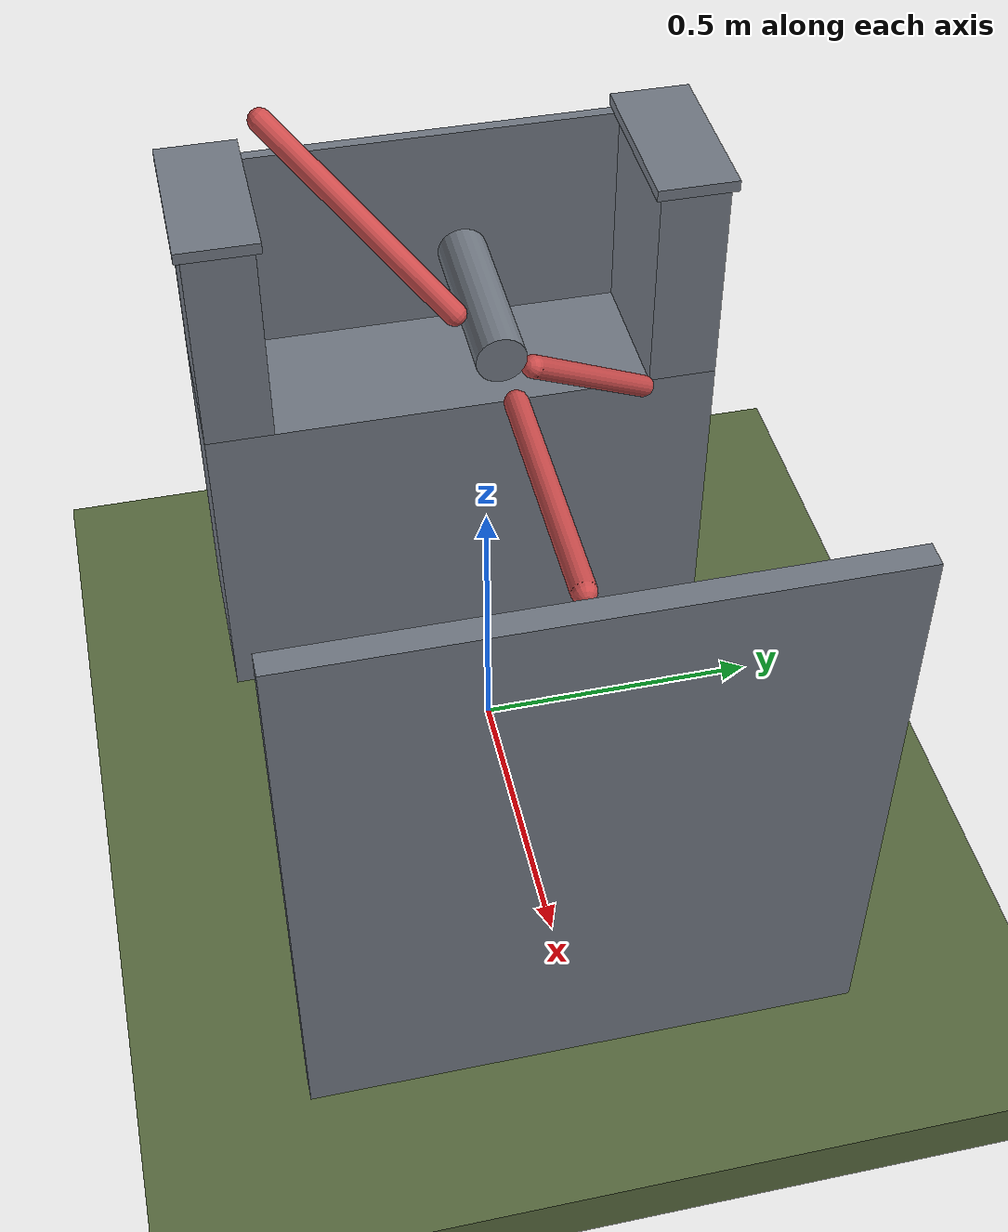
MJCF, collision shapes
<?xml version="1.0" ?>
<mujoco model="db0344_turnstile_tripod_simple">
  <compiler angle="radian" meshdir="../../hardware" texturedir="../../textures" autolimits="true" inertiafromgeom="false"/>
  <option timestep="0.002" integrator="implicitfast" cone="elliptic" impratio="10" noslip_iterations="3">
    <flag multiccd="enable"/>
  </option>
  <size memory="16M"/>
  <default>
    <geom condim="4" solref="0.005 1" solimp="0.95 0.99 0.001"/>
    <joint solreflimit="0.005 1" solimplimit="0.95 0.99 0.001"/>
    <tendon solreflimit="0.005 1"/>
    <equality solref="0.002 1"/>
  </default>
  <visual>
    <headlight ambient="0.4 0.4 0.4" diffuse="0.7 0.7 0.7" specular="0.2 0.2 0.2"/>
    <quality shadowsize="4096"/>
    <map znear="0.01" zfar="60"/>
  </visual>
  <asset>
    <mesh name="tripod_ae832648e5" file="tripod_ae832648e5.obj"/>
    <material name="mat_floor" rgba="0.35 0.42 0.25 1" specular="0.2" shininess="0.15" reflectance="0"/>
    <material name="mat_wall" rgba="0.78 0.76 0.7 1" specular="0.2" shininess="0.1" reflectance="0"/>
    <material name="mat_frame" rgba="0.45 0.48 0.52 1" specular="0.32" shininess="0.6" reflectance="0.08"/>
    <material name="mat_op_stainless" rgba="0.75 0.76 0.77 1" specular="0.8" shininess="0.65" reflectance="0.4"/>
    <texture name="skybox" type="skybox" builtin="gradient" rgb1="0.6 0.7 0.85" rgb2="0.9 0.92 0.95" width="256" height="256"/>
  </asset>
  <worldbody>
    <light name="sun" pos="1.5 -2.5 4" dir="-0.3 0.5 -0.8" directional="true" diffuse="0.8 0.8 0.8" specular="0.3 0.3 0.3" castshadow="true"/>
    <light name="fill" pos="-1.5 2.5 3" dir="0.3 -0.5 -0.7" directional="true" diffuse="0.35 0.35 0.4" castshadow="false"/>
    <camera name="robot_view" pos="0 -1.875 1.05" xyaxes="1 0 0 0 0.26963 0.962964" fovy="52"/>
    <camera name="far_view" pos="0 1.875 1.05" xyaxes="-1 0 0 0 -0.26963 0.962964" fovy="52"/>
    <camera name="iso" pos="1.425 -1.575 1.35" xyaxes="0.741536 0.670913 0 -0.242917 0.268487 0.932151" fovy="46"/>
    <camera name="detail_handle" pos="0.55 -1.1 1.3" xyaxes="0.975133 0.221621 0 -0.065674 0.288965 0.955084" fovy="38"/>
    <geom name="floor" type="box" size="6 6 0.05" pos="0 0 -0.05" material="mat_floor" group="0" contype="1" conaffinity="1" friction="0.8 0.005 0.0001" density="2400"/>
    <geom name="cabinet" type="box" size="0.14 0.45 0.3" pos="-0.315 0 0.3" material="mat_frame" group="0" contype="1" conaffinity="1" friction="0.6 0.005 0.0001" density="800"/>
    <geom name="cabinet_end_n" type="box" size="0.14 0.06 0.19" pos="-0.315 -0.39 0.79" material="mat_frame" group="0" contype="1" conaffinity="1" friction="0.6 0.005 0.0001" density="800"/>
    <geom name="cabinet_end_p" type="box" size="0.14 0.06 0.19" pos="-0.315 0.39 0.79" material="mat_frame" group="0" contype="1" conaffinity="1" friction="0.6 0.005 0.0001" density="800"/>
    <geom name="cabinet_back" type="box" size="0.01 0.45 0.19" pos="-0.445 0 0.79" material="mat_frame" group="0" contype="1" conaffinity="1" friction="0.6 0.005 0.0001" density="800"/>
    <geom name="cabinet_top_n" type="box" size="0.15 0.07 0.01" pos="-0.315 -0.39 0.99" material="mat_frame" group="0" contype="1" conaffinity="1" friction="0.6 0.005 0.0001" density="7900"/>
    <geom name="cabinet_top_p" type="box" size="0.15 0.07 0.01" pos="-0.315 0.39 0.99" material="mat_frame" group="0" contype="1" conaffinity="1" friction="0.6 0.005 0.0001" density="7900"/>
    <geom name="guide_rail_post" type="box" size="0.02 0.45 0.5" pos="0.715 0 0.5" material="mat_frame" group="0" contype="1" conaffinity="1" friction="0.6 0.005 0.0001" density="7900"/>
    <site name="approach_point" pos="0.375 -1.2 0" quat="1 0 0 0" size="0.05" rgba="0.2 0.9 0.2 0.5" group="4"/>
    <site name="goal_point" pos="0.375 1.2 0" quat="1 0 0 0" size="0.05" rgba="0.2 0.9 0.2 0.5" group="4"/>
    <site name="door_plane_center" pos="0.375 0 1" quat="1 0 0 0" size="0.02" rgba="0.2 0.9 0.2 0.5" group="4"/>
    <body name="rotor" pos="0.115 0 0.93">
      <inertial pos="-0.005663 0 0" mass="10.738226" quat="0.653281 -0.270598 -0.270598 -0.653281" diaginertia="0.569651413 0.693715098 1.243060055"/>
      <joint name="rotor_hinge" type="hinge" axis="0 0.707107 0.707107" limited="false" damping="2" frictionloss="3.084245" armature="0.05"/>
      <geom name="hub_boss" type="cylinder" size="0.04 0.145" pos="-0.145 0 0" quat="0.707107 0 0.707107 0" material="mat_frame" group="1" contype="0" conaffinity="0" density="800"/>
      <geom name="tripod_mesh" type="mesh" mesh="tripod_ae832648e5" pos="0 0 0" quat="0.92388 -0.382683 0 0" material="mat_op_stainless" group="1" contype="0" conaffinity="0" density="7900"/>
      <geom name="arm_0_col" type="capsule" size="0.019 0.2" pos="0.3 0 0" quat="0.707107 0 0.707107 0" material="mat_op_stainless" group="3" contype="1" conaffinity="1" rgba="0.8 0.3 0.3 0.25" friction="0.6 0.005 0.0001" density="7900"/>
      <geom name="arm_1_col" type="capsule" size="0.019 0.2" pos="-0.15 0.183712 -0.183712" quat="0.440243 -0.695494 -0.567868 0" material="mat_op_stainless" group="3" contype="1" conaffinity="1" rgba="0.8 0.3 0.3 0.25" friction="0.6 0.005 0.0001" density="7900"/>
      <geom name="arm_2_col" type="capsule" size="0.019 0.2" pos="-0.15 -0.183712 0.183712" quat="0.897879 0.341011 -0.278434 0" material="mat_op_stainless" group="3" contype="1" conaffinity="1" rgba="0.8 0.3 0.3 0.25" friction="0.6 0.005 0.0001" density="7900"/>
      <site name="arm_push" pos="0.45 0 0" quat="1 0 0 0" size="0.015" rgba="0.2 0.9 0.2 0.5" group="4"/>
    </body>
  </worldbody>
  <equality>
    <weld name="rotor_solenoid_hold" body1="rotor" body2="world" active="true"/>
  </equality>
  <sensor>
    <jointpos name="rotor_hinge_pos" joint="rotor_hinge"/>
    <jointvel name="rotor_hinge_vel" joint="rotor_hinge"/>
  </sensor>
</mujoco>
